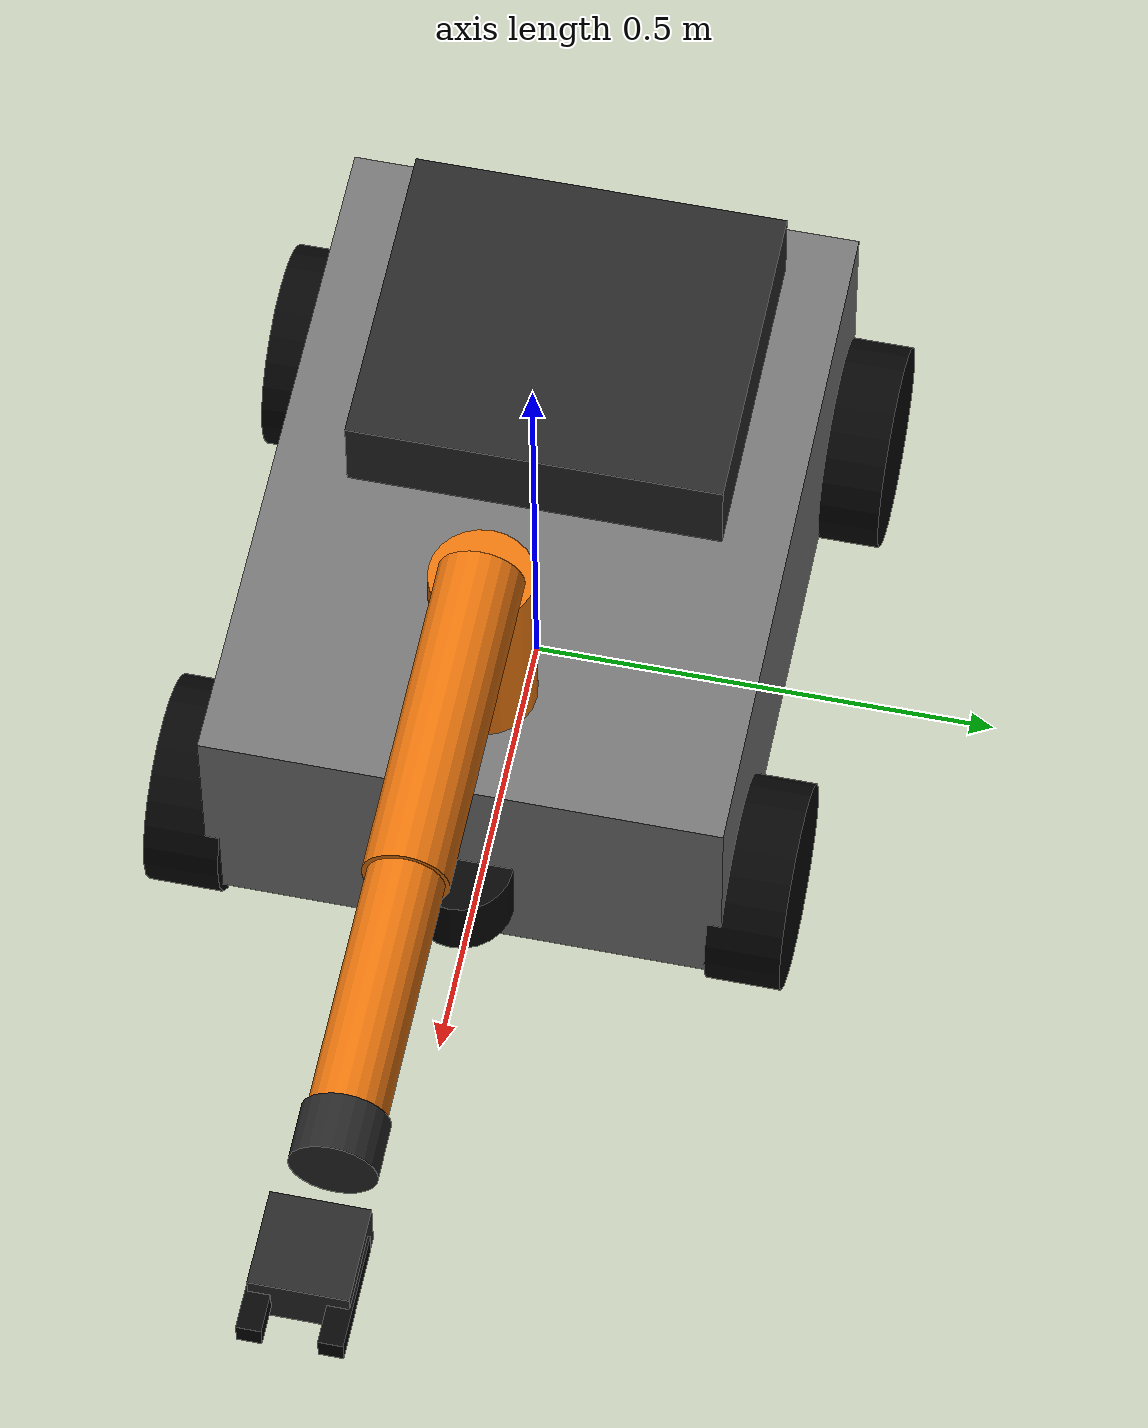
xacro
<?xml version="1.0"?>
<robot name="scout_ur3e_gazebo_ultra_lite" xmlns:xacro="http://www.ros.org/wiki/xacro">

  <!-- Materials -->
  <material name="gray">
    <color rgba="0.45 0.45 0.45 1"/>
  </material>

  <material name="dark_gray">
    <color rgba="0.15 0.15 0.15 1"/>
  </material>

  <material name="black">
    <color rgba="0.02 0.02 0.02 1"/>
  </material>

  <material name="blue">
    <color rgba="0.1 0.2 0.8 1"/>
  </material>

  <material name="orange">
    <color rgba="0.9 0.45 0.05 1"/>
  </material>

  <!-- Base Link -->
  <link name="base_link">
    <inertial>
      <mass value="45.0"/>
      <origin xyz="0 0 0"/>
      <inertia ixx="2.0" ixy="0" ixz="0" iyy="2.0" iyz="0" izz="2.5"/>
    </inertial>

    <visual>
      <origin xyz="0 0 0.18" rpy="0 0 0"/>
      <geometry>
        <box size="0.75 0.55 0.28"/>
      </geometry>
      <material name="gray"/>
    </visual>

    <collision>
      <origin xyz="0 0 0.18" rpy="0 0 0"/>
      <geometry>
        <box size="0.75 0.55 0.28"/>
      </geometry>
    </collision>
  </link>

  <link name="base_footprint"/>

  <joint name="base_footprint_joint" type="fixed">
    <parent link="base_link"/>
    <child link="base_footprint"/>
    <origin xyz="0 0 -0.02" rpy="0 0 0"/>
  </joint>

  <!-- Wheels -->
  <link name="front_left_wheel_link">
    <visual>
      <origin xyz="0 0 0" rpy="1.5708 0 0"/>
      <geometry>
        <cylinder radius="0.11" length="0.08"/>
      </geometry>
      <material name="black"/>
    </visual>
    <collision>
      <origin xyz="0 0 0" rpy="1.5708 0 0"/>
      <geometry>
        <cylinder radius="0.11" length="0.08"/>
      </geometry>
    </collision>
    <inertial>
      <mass value="1.0"/>
      <inertia ixx="0.01" ixy="0" ixz="0" iyy="0.01" iyz="0" izz="0.01"/>
    </inertial>
  </link>

  <joint name="front_left_wheel_joint" type="fixed">
    <parent link="base_link"/>
    <child link="front_left_wheel_link"/>
    <origin xyz="0.28 0.30 0.08" rpy="0 0 0"/>
  </joint>

  <link name="front_right_wheel_link">
    <visual>
      <origin xyz="0 0 0" rpy="1.5708 0 0"/>
      <geometry>
        <cylinder radius="0.11" length="0.08"/>
      </geometry>
      <material name="black"/>
    </visual>
    <collision>
      <origin xyz="0 0 0" rpy="1.5708 0 0"/>
      <geometry>
        <cylinder radius="0.11" length="0.08"/>
      </geometry>
    </collision>
    <inertial>
      <mass value="1.0"/>
      <inertia ixx="0.01" ixy="0" ixz="0" iyy="0.01" iyz="0" izz="0.01"/>
    </inertial>
  </link>

  <joint name="front_right_wheel_joint" type="fixed">
    <parent link="base_link"/>
    <child link="front_right_wheel_link"/>
    <origin xyz="0.28 -0.30 0.08" rpy="0 0 0"/>
  </joint>

  <link name="rear_left_wheel_link">
    <visual>
      <origin xyz="0 0 0" rpy="1.5708 0 0"/>
      <geometry>
        <cylinder radius="0.11" length="0.08"/>
      </geometry>
      <material name="black"/>
    </visual>
    <collision>
      <origin xyz="0 0 0" rpy="1.5708 0 0"/>
      <geometry>
        <cylinder radius="0.11" length="0.08"/>
      </geometry>
    </collision>
    <inertial>
      <mass value="1.0"/>
      <inertia ixx="0.01" ixy="0" ixz="0" iyy="0.01" iyz="0" izz="0.01"/>
    </inertial>
  </link>

  <joint name="rear_left_wheel_joint" type="fixed">
    <parent link="base_link"/>
    <child link="rear_left_wheel_link"/>
    <origin xyz="-0.28 0.30 0.08" rpy="0 0 0"/>
  </joint>

  <link name="rear_right_wheel_link">
    <visual>
      <origin xyz="0 0 0" rpy="1.5708 0 0"/>
      <geometry>
        <cylinder radius="0.11" length="0.08"/>
      </geometry>
      <material name="black"/>
    </visual>
    <collision>
      <origin xyz="0 0 0" rpy="1.5708 0 0"/>
      <geometry>
        <cylinder radius="0.11" length="0.08"/>
      </geometry>
    </collision>
    <inertial>
      <mass value="1.0"/>
      <inertia ixx="0.01" ixy="0" ixz="0" iyy="0.01" iyz="0" izz="0.01"/>
    </inertial>
  </link>

  <joint name="rear_right_wheel_joint" type="fixed">
    <parent link="base_link"/>
    <child link="rear_right_wheel_link"/>
    <origin xyz="-0.28 -0.30 0.08" rpy="0 0 0"/>
  </joint>

  <!-- UR3e simplified arm -->
  <link name="ur3e_base_link">
    <visual>
      <origin xyz="0 0 0.04" rpy="0 0 0"/>
      <geometry>
        <cylinder radius="0.08" length="0.08"/>
      </geometry>
      <material name="dark_gray"/>
    </visual>
    <collision>
      <origin xyz="0 0 0.04" rpy="0 0 0"/>
      <geometry>
        <cylinder radius="0.08" length="0.08"/>
      </geometry>
    </collision>
    <inertial>
      <mass value="2.0"/>
      <inertia ixx="0.02" ixy="0" ixz="0" iyy="0.02" iyz="0" izz="0.02"/>
    </inertial>
  </link>

  <joint name="ur3e_base_joint" type="fixed">
    <parent link="base_link"/>
    <child link="ur3e_base_link"/>
    <origin xyz="0.25 0.0 0.10" rpy="0 0 0"/>
  </joint>

  <link name="ur3e_shoulder_link">
    <visual>
      <origin xyz="0 0 0.18" rpy="0 0 0"/>
      <geometry>
        <cylinder radius="0.055" length="0.36"/>
      </geometry>
      <material name="orange"/>
    </visual>
    <collision>
      <origin xyz="0 0 0.18" rpy="0 0 0"/>
      <geometry>
        <cylinder radius="0.055" length="0.36"/>
      </geometry>
    </collision>
    <inertial>
      <mass value="1.5"/>
      <inertia ixx="0.02" ixy="0" ixz="0" iyy="0.02" iyz="0" izz="0.02"/>
    </inertial>
  </link>

  <joint name="ur3e_shoulder_joint" type="fixed">
    <parent link="ur3e_base_link"/>
    <child link="ur3e_shoulder_link"/>
    <origin xyz="0 0 0.08" rpy="0 0 0"/>
  </joint>

  <link name="ur3e_upper_arm_link">
    <visual>
      <origin xyz="0.18 0 0" rpy="0 1.5708 0"/>
      <geometry>
        <cylinder radius="0.045" length="0.36"/>
      </geometry>
      <material name="orange"/>
    </visual>
    <collision>
      <origin xyz="0.18 0 0" rpy="0 1.5708 0"/>
      <geometry>
        <cylinder radius="0.045" length="0.36"/>
      </geometry>
    </collision>
    <inertial>
      <mass value="1.2"/>
      <inertia ixx="0.015" ixy="0" ixz="0" iyy="0.015" iyz="0" izz="0.015"/>
    </inertial>
  </link>

  <joint name="ur3e_elbow_joint" type="fixed">
    <parent link="ur3e_shoulder_link"/>
    <child link="ur3e_upper_arm_link"/>
    <origin xyz="0 0 0.36" rpy="0 0 0"/>
  </joint>

  <link name="ur3e_forearm_link">
    <visual>
      <origin xyz="0.15 0 0" rpy="0 1.5708 0"/>
      <geometry>
        <cylinder radius="0.04" length="0.30"/>
      </geometry>
      <material name="orange"/>
    </visual>
    <collision>
      <origin xyz="0.15 0 0" rpy="0 1.5708 0"/>
      <geometry>
        <cylinder radius="0.04" length="0.30"/>
      </geometry>
    </collision>
    <inertial>
      <mass value="1.0"/>
      <inertia ixx="0.012" ixy="0" ixz="0" iyy="0.012" iyz="0" izz="0.012"/>
    </inertial>
  </link>

  <joint name="ur3e_wrist_joint" type="fixed">
    <parent link="ur3e_upper_arm_link"/>
    <child link="ur3e_forearm_link"/>
    <origin xyz="0.36 0 0" rpy="0 0 0"/>
  </joint>

  <link name="ur3e_flange">
    <visual>
      <origin xyz="0 0 0" rpy="0 1.5708 0"/>
      <geometry>
        <cylinder radius="0.045" length="0.06"/>
      </geometry>
      <material name="dark_gray"/>
    </visual>
    <collision>
      <origin xyz="0 0 0" rpy="0 1.5708 0"/>
      <geometry>
        <cylinder radius="0.045" length="0.06"/>
      </geometry>
    </collision>
    <inertial>
      <mass value="0.5"/>
      <inertia ixx="0.005" ixy="0" ixz="0" iyy="0.005" iyz="0" izz="0.005"/>
    </inertial>
  </link>

  <joint name="ur3e_flange_joint" type="fixed">
    <parent link="ur3e_forearm_link"/>
    <child link="ur3e_flange"/>
    <origin xyz="0.30 0 0" rpy="0 0 0"/>
  </joint>

  <link name="ur3e_tool0"/>
  <joint name="ur3e_tool0_joint" type="fixed">
    <parent link="ur3e_flange"/>
    <child link="ur3e_tool0"/>
    <origin xyz="0.04 0 0" rpy="0 0 0"/>
  </joint>

  <!-- Simple Robotiq gripper -->
  <link name="robotiq_85_base_link">
    <visual>
      <origin xyz="0.05 0 0" rpy="0 0 0"/>
      <geometry>
        <box size="0.10 0.10 0.06"/>
      </geometry>
      <material name="dark_gray"/>
    </visual>
    <collision>
      <origin xyz="0.05 0 0" rpy="0 0 0"/>
      <geometry>
        <box size="0.10 0.10 0.06"/>
      </geometry>
    </collision>
    <inertial>
      <mass value="0.6"/>
      <inertia ixx="0.003" ixy="0" ixz="0" iyy="0.003" iyz="0" izz="0.003"/>
    </inertial>
  </link>

  <joint name="robotiq_85_base_joint" type="fixed">
    <parent link="ur3e_tool0"/>
    <child link="robotiq_85_base_link"/>
    <origin xyz="0.04 0 0" rpy="0 0 0"/>
  </joint>

  <link name="robotiq_85_left_finger_link">
    <visual>
      <origin xyz="0.08 0.04 0" rpy="0 0 0"/>
      <geometry>
        <box size="0.12 0.025 0.025"/>
      </geometry>
      <material name="black"/>
    </visual>
    <collision>
      <origin xyz="0.08 0.04 0" rpy="0 0 0"/>
      <geometry>
        <box size="0.12 0.025 0.025"/>
      </geometry>
    </collision>
    <inertial>
      <mass value="0.1"/>
      <inertia ixx="0.0001" ixy="0" ixz="0" iyy="0.0001" iyz="0" izz="0.0001"/>
    </inertial>
  </link>

  <joint name="robotiq_85_left_finger_joint" type="fixed">
    <parent link="robotiq_85_base_link"/>
    <child link="robotiq_85_left_finger_link"/>
    <origin xyz="0 0 0" rpy="0 0 0"/>
  </joint>

  <link name="robotiq_85_right_finger_link">
    <visual>
      <origin xyz="0.08 -0.04 0" rpy="0 0 0"/>
      <geometry>
        <box size="0.12 0.025 0.025"/>
      </geometry>
      <material name="black"/>
    </visual>
    <collision>
      <origin xyz="0.08 -0.04 0" rpy="0 0 0"/>
      <geometry>
        <box size="0.12 0.025 0.025"/>
      </geometry>
    </collision>
    <inertial>
      <mass value="0.1"/>
      <inertia ixx="0.0001" ixy="0" ixz="0" iyy="0.0001" iyz="0" izz="0.0001"/>
    </inertial>
  </link>

  <joint name="robotiq_85_right_finger_joint" type="fixed">
    <parent link="robotiq_85_base_link"/>
    <child link="robotiq_85_right_finger_link"/>
    <origin xyz="0 0 0" rpy="0 0 0"/>
  </joint>

  <!-- Velodyne -->
  <link name="velodyne_link">
    <visual>
      <origin xyz="0 0 0.04" rpy="0 0 0"/>
      <geometry>
        <cylinder radius="0.055" length="0.08"/>
      </geometry>
      <material name="black"/>
    </visual>
    <collision>
      <origin xyz="0 0 0.04" rpy="0 0 0"/>
      <geometry>
        <cylinder radius="0.055" length="0.08"/>
      </geometry>
    </collision>
    <inertial>
      <mass value="0.5"/>
      <inertia ixx="0.001" ixy="0" ixz="0" iyy="0.001" iyz="0" izz="0.001"/>
    </inertial>
  </link>

  <joint name="velodyne_joint" type="fixed">
    <parent link="base_link"/>
    <child link="velodyne_link"/>
    <origin xyz="0.38 0.0 0.10" rpy="0 0 0"/>
  </joint>

  <!-- UR Control Box -->
  <link name="ur_control_box_link">
    <visual>
      <geometry>
        <box size="0.35 0.40 0.30"/>
      </geometry>
      <material name="dark_gray"/>
    </visual>
    <collision>
      <geometry>
        <box size="0.35 0.40 0.30"/>
      </geometry>
    </collision>
    <inertial>
      <mass value="3.0"/>
      <inertia ixx="0.02" ixy="0" ixz="0" iyy="0.02" iyz="0" izz="0.02"/>
    </inertial>
  </link>

  <joint name="ur_control_box_joint" type="fixed">
    <parent link="base_link"/>
    <child link="ur_control_box_link"/>
    <origin xyz="-0.15 0.005 0.26" rpy="0 0 0"/>
  </joint>

  <!-- RealSense D435i simplified -->
  <link name="realsense_d435i_link">
    <visual>
      <geometry>
        <box size="0.09 0.025 0.025"/>
      </geometry>
      <material name="blue"/>
    </visual>
    <collision>
      <geometry>
        <box size="0.09 0.025 0.025"/>
      </geometry>
    </collision>
    <inertial>
      <mass value="0.1"/>
      <inertia ixx="0.0001" ixy="0" ixz="0" iyy="0.0001" iyz="0" izz="0.0001"/>
    </inertial>
  </link>

  <joint name="realsense_d435i_joint" type="fixed">
    <parent link="ur3e_flange"/>
    <child link="realsense_d435i_link"/>
    <origin xyz="-0.025 0 -0.04" rpy="0 3.14159 3.14159"/>
  </joint>

  <link name="realsense_d435i_color_optical_frame"/>
  <joint name="realsense_d435i_color_optical_joint" type="fixed">
    <parent link="realsense_d435i_link"/>
    <child link="realsense_d435i_color_optical_frame"/>
    <origin xyz="0 0 0" rpy="-1.5708 0 -1.5708"/>
  </joint>

  <link name="realsense_d435i_depth_optical_frame"/>
  <joint name="realsense_d435i_depth_optical_joint" type="fixed">
    <parent link="realsense_d435i_link"/>
    <child link="realsense_d435i_depth_optical_frame"/>
    <origin xyz="0 0 0" rpy="-1.5708 0 -1.5708"/>
  </joint>

</robot>
